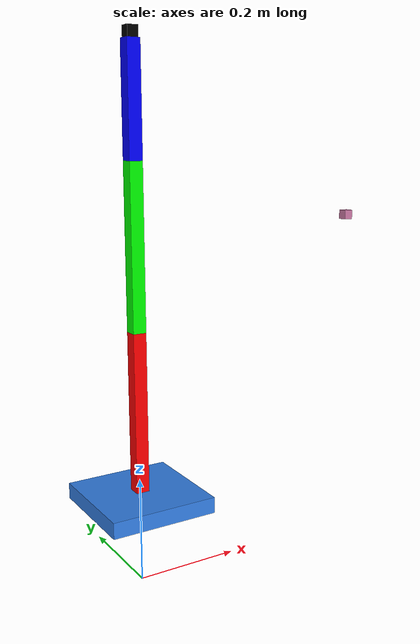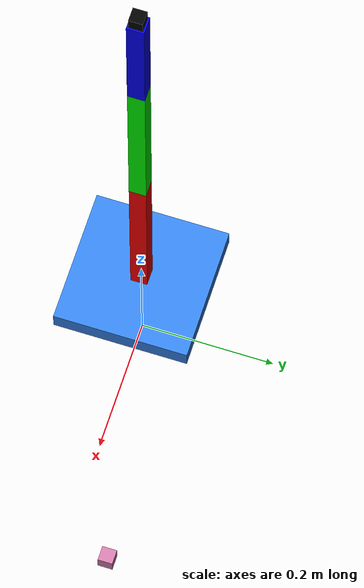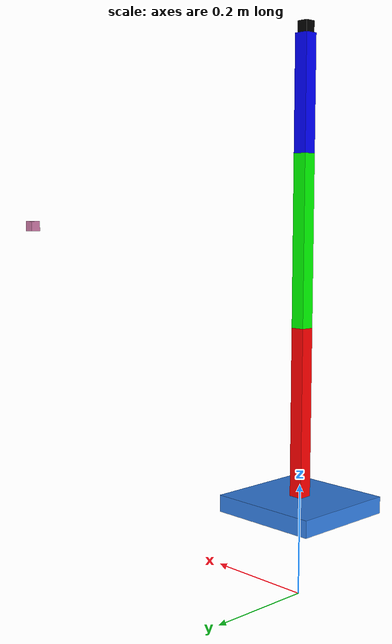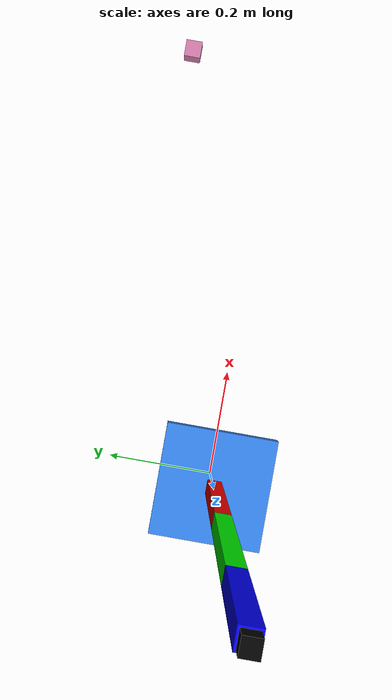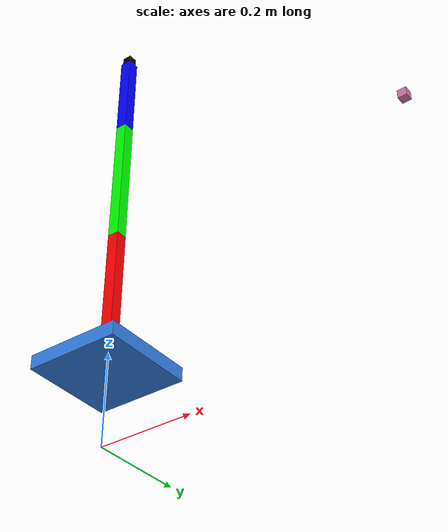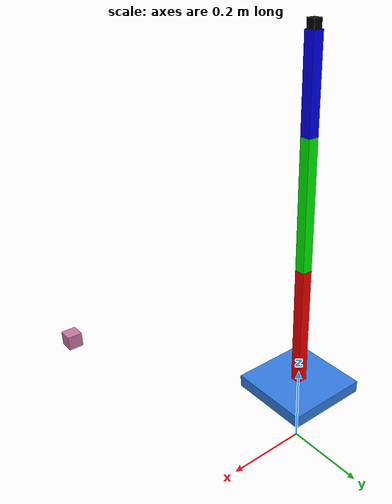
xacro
<?xml version="1.0"?>
<robot xmlns:xacro="http://www.ros.org/wiki/xacro" name="shenzhiyishou">
    <!--xmlns：xacro表示这个文档里用的是xacro-->
    <!-- 全局参数-->
    <!-- 底座-->
    <xacro:property name="dizuo_w" value="0.2" />
    <xacro:property name="dizuo_l" value="0.2" />
    <xacro:property name="dizuo_h" value="0.03" />
    <xacro:property name="base_mass" value="1.3" />

    <!-- link长度-->
    <xacro:property name="link1_h" value="0.3" />
    <xacro:property name="link2_h" value="0.3" />
    <xacro:property name="link3_h" value="0.2" />
    <!-- link半径-->
    <xacro:property name="link_m_w" value="0.025" />
    <xacro:property name="link_m_l" value="0.025" />

    <!-- 连杆宏-->
    <xacro:macro name="link" params="name l w h mass color a b c d">
        <link name="${name}">
            <visual>
                <origin xyz="0 0 ${h/2}" rpy="0 0 0" />
                <geometry>
                    <box size="${l} ${w} ${h}" />
                </geometry>
                <material name="${color}">
                    <color rgba="${a} ${b} ${c} ${d}" />
                </material>
            </visual>
            <collision name="zhuti">
                <origin xyz="0 0 ${h/2-0.01}" rpy="0 0 0" />
                <geometry>
                    <box size="${l} ${w} ${h-0.02}" />
                </geometry>
            </collision>
            <collision name="dianji">
                <origin xyz="0 0 ${h-0.01}" rpy="0 0 0" />
                <geometry>
                    <sphere radius="0.02" />
                </geometry>

            </collision>
            <inertial>
                <mass value="${mass}" />
                <inertia
                    ixx="${mass*(l*l + h*h)/12}"
                    iyy="${mass*(w*w + h*h)/12}"
                    izz="${mass*(w*w + l*l)/12}"
                    ixy="0.0" ixz="0.0" iyz="0.0" />

            </inertial>
        </link>
    </xacro:macro>
    <!-- 底座-->
    <link name="base_link">
        <visual>
            <geometry>
                <box size="${dizuo_l} ${dizuo_w} ${dizuo_h}" />
            </geometry>
            <material name="dizuodeyanse">
                <color rgba="0.2 0.5 0.9 1.0" />
            </material>
        </visual>
        <collision>
            <geometry>
                <box size="${dizuo_l} ${dizuo_w} ${dizuo_h}" />
            </geometry>
        </collision>
        <inertial>
            <mass value="1.3" />
            <inertia ixx="${base_mass*(dizuo_l*dizuo_l + dizuo_h*dizuo_h)/12}"
                iyy="${base_mass*(dizuo_w*dizuo_w + dizuo_h*dizuo_h)/12}"
                izz="${base_mass*(dizuo_w*dizuo_w + dizuo_l*dizuo_l)/12}"
                ixy="0.0" ixz="0.0" iyz="0.0" />
        </inertial>
    </link>
    <!-- 生成link-->
    <xacro:link name="link1" h="${link1_h}" w="${link_m_w}" l="${link_m_l}" mass="0.2"
        color="link1se" a="1.0" b="0.0" c="0.0" d="1.0" />
    <xacro:link name="link2" h="${link2_h}" w="${link_m_w}" l="${link_m_l}" mass="0.2"
        color="link2se" a="0.0" b="1.0" c="0.0" d="1.0" />
    <xacro:link name="link3" h="${link3_h}" w="${link_m_w}" l="${link_m_l}" mass="0.1"
        color="link3se" a="0.0" b="0.0" c="1.0" d="1.0" />

    <link name="jiazi">
        <visual>
            <origin xyz="0 0 0.01" rpy="0 0 0" />
            <geometry>
                <box size="0.02 0.02 0.02" />
            </geometry>
            <material name="jiazise">
                <color rgba="0 0 0 1.0" />
            </material>
        </visual>
        <inertial>
            <mass value="0.001" />
            <inertia
                ixx="${0.001*(0.02*0.02 + 0.02*0.02)/12}"
                iyy="${0.001*(0.02*0.02 + 0.02*0.02)/12}"
                izz="${0.001*(0.02*0.02 + 0.02*0.02)/12}"
                ixy="0.0" ixz="0.0" iyz="0.0" />
        </inertial>

    </link>
    <link name="world">
    </link>

    <!-- joint生成宏-->
    <xacro:macro name="joint"
        params="name parent child x y z r p y2 x1 y1 z1 lower upper effort velocity">
        <joint name="${name}" type="revolute">
            <parent link="${parent}" />
            <child link="${child}" />
            <origin xyz="${x} ${y} ${z}" rpy="${r} ${p} ${y2}" />
            <axis xyz="${x1} ${y1} ${z1}" />
            <limit lower="${lower}" upper="${upper}" effort="${effort}" velocity="${velocity}" />
        </joint>
    </xacro:macro>

    <!-- 生成joint-->

    <xacro:joint name="l1_2" parent="link1" child="link2" x="0" y="0" z="0.3" r="0" p="0" y2="0"
        x1="0" y1="1" z1="0" lower="-0.5236" upper="1.5708" effort="10.0" velocity="1.0" />
    <xacro:joint name="l2_3" parent="link2" child="link3" x="0" y="0" z="0.3" r="0" p="0" y2="0"
        x1="0" y1="1" z1="0" lower="-1.5708" upper="1.5708" effort="10.0" velocity="1.0" />
    <joint name="b_1" type="revolute">
        <parent link="base_link" />
        <child link="link1" />
        <origin xyz="0 0 0.015" rpy="0 0 0" />
        <axis xyz="0 0 1" rpy="0 0 0" />
        <limit lower="0.0" upper="1.5708" effort="10.0" velocity="1.0" />
    </joint>
    <joint name="jiaqu" type="fixed">
        <parent link="link3" />
        <child link="jiazi" />
        <origin xyz="0 0 0.2" rpy="0 0 0" />
    </joint>
    <joint name="base" type="fixed">
        <parent link="world" />
        <child link="base_link" />
        <origin xyz="0 0 0.165" rpy="0 0 0" />
    </joint>

    <gazebo reference="base_link">
        <material>Gazebo/Grey</material>
    </gazebo>
    <gazebo reference="link1">
        <material>Gazebo/Red</material>
    </gazebo>
    <gazebo reference="link2">
        <material>Gazebo/Green</material>
    </gazebo>
    <gazebo reference="link3">
        <material>Gazebo/Blue</material>
    </gazebo>
    <gazebo reference="jiazi">
        <material>Gazebo/Black</material>
    </gazebo>
    <gazebo>
        <plugin filename="libgazebo_ros2_control.so" name="gazebo_ros2_control">
            <parameters>$(find shoubi_description)/config/arm_controllers.yaml</parameters>
        </plugin>
    </gazebo>
    <ros2_control name="ArmSystem" type="system">
        <hardware>
            <plugin>gazebo_ros2_control/GazeboSystem</plugin>
        </hardware>
        <joint name="b_1">
            <command_interface name="position" />
            <state_interface name="position" />
        </joint>
        <joint name="l1_2">
            <command_interface name="position" />
            <state_interface name="position" />
        </joint>
        <joint name="l2_3">
            <command_interface name="position" />
            <state_interface name="position" />
        </joint>
    </ros2_control>

    <link name="xiangji">
        <visual>
            <geometry>
                <box size="0.02 0.02 0.02" />
            </geometry>

        </visual>
        <collision>
            <geometry>
                <box size="0.02 0.02 0.02" />
            </geometry>
        </collision>
        <inertial>
            <mass value="0.01" />
            <inertia ixx="1e-6" iyy="1e-6" izz="1e-6" ixy="0" ixz="0" iyz="0" />
        </inertial>

    </link>
    <joint name="camera_joint" type="fixed">
        <parent link="world" />
        <child link="xiangji" />
        <origin xyz="0.6 0.15 0.65" rpy="0 1.5708 0" />
    </joint>
    <gazebo reference="xiangji">
        <sensor type="depth" name="top_camera">
            <update_rate>30</update_rate>
            <camera>
                <horizontal_fov>1.5708</horizontal_fov>
                <image>
                    <width>640</width>
                    <height>480</height>
                    <format>R8G8B8</format>
                </image>
                <clip>
                    <near>0.1</near>
                    <far>5.0</far>
                </clip>
            </camera>
            <plugin filename="libgazebo_ros_camera.so" name="camera_controller">
                <ros>
                    <namespace>/top_camera</namespace>
                    <remapping>image_raw:=color/image_raw</remapping>
                    <remapping>depth/image_raw:=color/Image_depth_raw</remapping>
                    <remapping>camera_info:=color/camera_info</remapping>
                </ros>
                <camera_name>color</camera_name>
                <frame_name>camera_link</frame_name>
            </plugin>
        </sensor>
    </gazebo>
</robot>
